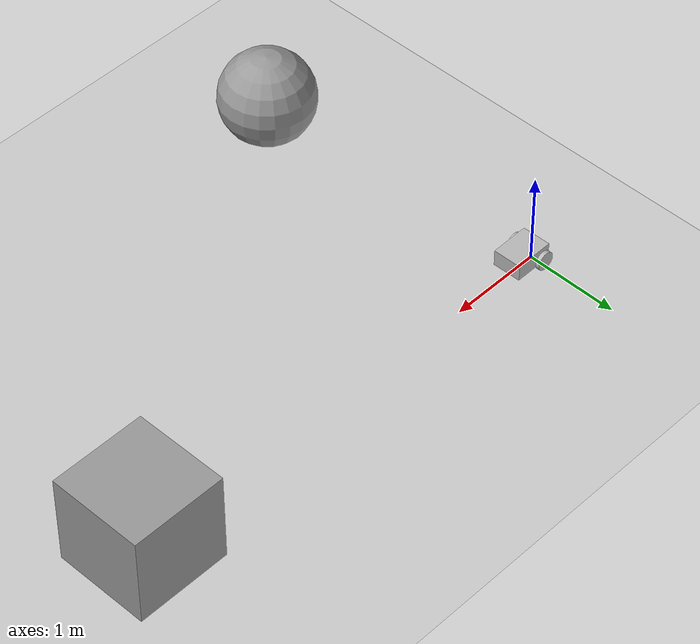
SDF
<sdf version="1.7">
 <world name="default">
  <light name="sun" type="directional">
   <pose>0 0 10 0 -0 0</pose>
   <diffuse>0.8 0.8 0.8 1</diffuse>
   <specular>0.2 0.2 0.2 1</specular>
   <attenuation>
    <range>1000</range>
    <constant>0.9</constant>
    <linear>0.01</linear>
    <quadratic>0.001</quadratic>
   </attenuation>
   <direction>-0.5 0.1 -0.9</direction>
   <spot><inner_angle>0</inner_angle><outer_angle>0</outer_angle><falloff>0</falloff></spot>
  </light>
  <model name="ground_plane">
   <static>1</static>
   <link name="link">
    <collision name="collision">
     <geometry><plane><normal>0 0 1</normal><size>100 100</size></plane></geometry>
     <surface>
      <contact><collide_bitmask>65535</collide_bitmask></contact>
      <friction><ode><mu>100</mu><mu2>50</mu2></ode></friction>
     </surface>
    </collision>
    <visual name="visual">
     <cast_shadows>0</cast_shadows>
     <geometry><plane><normal>0 0 1</normal><size>100 100</size></plane></geometry>
     <material>
      <script><uri>file://media/materials/scripts/gazebo.material</uri><name>Gazebo/Grey</name></script>
     </material>
    </visual>
   </link>
  </model>
  <gravity>0 0 -9.8</gravity>
  <magnetic_field>6e-06 2.3e-05 -4.2e-05</magnetic_field>
  <atmosphere type="adiabatic"/>
  <physics type="ode">
   <max_step_size>0.001</max_step_size>
   <real_time_factor>1</real_time_factor>
   <real_time_update_rate>1000</real_time_update_rate>
  </physics>
  <scene><ambient>0.4 0.4 0.4 1</ambient><background>0.7 0.7 0.7 1</background><shadows>1</shadows></scene>
  <audio><device>default</device></audio>
  <spherical_coordinates>
   <surface_model>EARTH_WGS84</surface_model>
   <latitude_deg>0</latitude_deg>
   <longitude_deg>0</longitude_deg>
   <elevation>0</elevation>
   <heading_deg>0</heading_deg>
  </spherical_coordinates>
  <model name="my_robot">
   <link name="base_link">
    <inertial>
     <mass>15</mass>
     <inertia><ixx>0.160625</ixx><ixy>0</ixy><ixz>0</ixz><iyy>0.261</iyy><iyz>0</iyz><izz>0.340625</izz></inertia>
    </inertial>
    <collision name="base_link_collision"><geometry><box><size>0.42 0.31 0.18</size></box></geometry></collision>
    <visual name="base_link_visual"><geometry><box><size>0.42 0.31 0.18</size></box></geometry></visual>
   </link>
   <joint name="caster_joint" type="revolute">
    <pose relative_to="base_link">0.14 0 -0.09 0 -0 0</pose>
    <parent>base_link</parent>
    <child>front_caster</child>
    <axis>
     <xyz>0 1 0</xyz>
     <limit><lower>-1e+16</lower><upper>1e+16</upper></limit>
     <dynamics><spring_reference>0</spring_reference><spring_stiffness>0</spring_stiffness></dynamics>
    </axis>
   </joint>
   <link name="front_caster">
    <pose relative_to="caster_joint">0 0 0 0 -0 0</pose>
    <inertial>
     <mass>0.5</mass>
     <inertia><ixx>0.002</ixx><ixy>0</ixy><ixz>0</ixz><iyy>0.002</iyy><iyz>0</iyz><izz>0.002</izz></inertia>
    </inertial>
    <collision name="front_caster_collision">
     <geometry><sphere><radius>0.06</radius></sphere></geometry>
    </collision>
    <visual name="front_caster_visual"><geometry><sphere><radius>0.06</radius></sphere></geometry></visual>
   </link>
   <joint name="drivewhl_l_joint" type="revolute">
    <pose relative_to="base_link">-0.12 0.18 -0.05 0 -0 0</pose>
    <parent>base_link</parent>
    <child>drivewhl_l_link</child>
    <axis>
     <xyz>0 1 0</xyz>
     <limit><lower>-1e+16</lower><upper>1e+16</upper></limit>
     <dynamics><spring_reference>0</spring_reference><spring_stiffness>0</spring_stiffness></dynamics>
    </axis>
   </joint>
   <link name="drivewhl_l_link">
    <pose relative_to="drivewhl_l_joint">0 0 0 0 -0 0</pose>
    <inertial>
     <mass>0.5</mass>
     <inertia>
      <ixx>0.00131667</ixx>
      <ixy>0</ixy>
      <ixz>0</ixz>
      <iyy>0.00131667</iyy>
      <iyz>0</iyz>
      <izz>0.000416667</izz>
     </inertia>
    </inertial>
    <collision name="drivewhl_l_link_collision">
     <pose>0 0 0 1.5708 -0 0</pose>
     <geometry><cylinder><length>0.04</length><radius>0.1</radius></cylinder></geometry>
    </collision>
    <visual name="drivewhl_l_link_visual">
     <pose>0 0 0 1.5708 -0 0</pose>
     <geometry><cylinder><length>0.04</length><radius>0.1</radius></cylinder></geometry>
    </visual>
   </link>
   <joint name="drivewhl_r_joint" type="revolute">
    <pose relative_to="base_link">-0.12 -0.18 -0.05 0 -0 0</pose>
    <parent>base_link</parent>
    <child>drivewhl_r_link</child>
    <axis>
     <xyz>0 1 0</xyz>
     <limit><lower>-1e+16</lower><upper>1e+16</upper></limit>
     <dynamics><spring_reference>0</spring_reference><spring_stiffness>0</spring_stiffness></dynamics>
    </axis>
   </joint>
   <link name="drivewhl_r_link">
    <pose relative_to="drivewhl_r_joint">0 0 0 0 -0 0</pose>
    <inertial>
     <mass>0.5</mass>
     <inertia>
      <ixx>0.00131667</ixx>
      <ixy>0</ixy>
      <ixz>0</ixz>
      <iyy>0.00131667</iyy>
      <iyz>0</iyz>
      <izz>0.000416667</izz>
     </inertia>
    </inertial>
    <collision name="drivewhl_r_link_collision">
     <pose>0 0 0 1.5708 -0 0</pose>
     <geometry><cylinder><length>0.04</length><radius>0.1</radius></cylinder></geometry>
    </collision>
    <visual name="drivewhl_r_link_visual">
     <pose>0 0 0 1.5708 -0 0</pose>
     <geometry><cylinder><length>0.04</length><radius>0.1</radius></cylinder></geometry>
    </visual>
   </link>
   <static>0</static>
   <plugin name="diff_drive" filename="libgazebo_ros_diff_drive.so">
    <ros><namespace>/demo</namespace></ros>
    <left_joint>drivewhl_l_joint</left_joint>
    <right_joint>drivewhl_r_joint</right_joint>
    <wheel_separation>0.4</wheel_separation>
    <wheel_diameter>0.2</wheel_diameter>
    <max_wheel_torque>20</max_wheel_torque>
    <max_wheel_acceleration>1.0</max_wheel_acceleration>
    <publish_odom>1</publish_odom>
    <publish_odom_tf>0</publish_odom_tf>
    <publish_wheel_tf>1</publish_wheel_tf>
    <odometry_frame>odom</odometry_frame>
    <robot_base_frame>base_link</robot_base_frame>
   </plugin>
   <pose>0.146074 0.004275 0.149998 -1e-06 2.2e-05 0.0111</pose>
  </model>
  <model name="unit_box">
   <pose>5 0 0.499995 0 1e-05 0</pose>
   <link name="link">
    <inertial>
     <mass>1</mass>
     <inertia>
      <ixx>0.166667</ixx>
      <ixy>0</ixy>
      <ixz>0</ixz>
      <iyy>0.166667</iyy>
      <iyz>0</iyz>
      <izz>0.166667</izz>
     </inertia>
    </inertial>
    <collision name="collision"><geometry><box><size>1 1 1</size></box></geometry></collision>
    <visual name="visual">
     <geometry><box><size>1 1 1</size></box></geometry>
     <material>
      <script><name>Gazebo/Grey</name><uri>file://media/materials/scripts/gazebo.material</uri></script>
     </material>
    </visual>
   </link>
  </model>
  <model name="unit_sphere">
   <pose>0.5 -3 0.5 0 -0 0</pose>
   <link name="link">
    <inertial>
     <mass>1</mass>
     <inertia><ixx>0.1</ixx><ixy>0</ixy><ixz>0</ixz><iyy>0.1</iyy><iyz>0</iyz><izz>0.1</izz></inertia>
    </inertial>
    <collision name="collision"><geometry><sphere><radius>0.5</radius></sphere></geometry></collision>
    <visual name="visual">
     <geometry><sphere><radius>0.5</radius></sphere></geometry>
     <material>
      <script><name>Gazebo/Grey</name><uri>file://media/materials/scripts/gazebo.material</uri></script>
     </material>
    </visual>
   </link>
  </model>
 </world>
</sdf>
